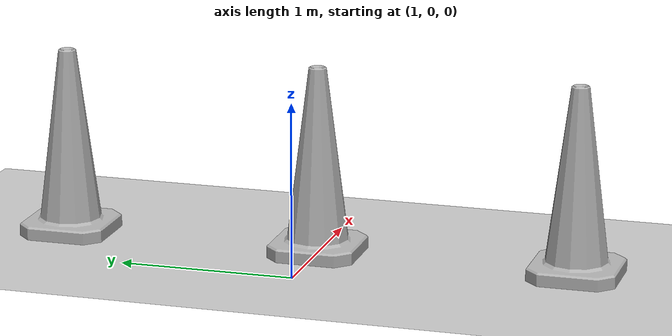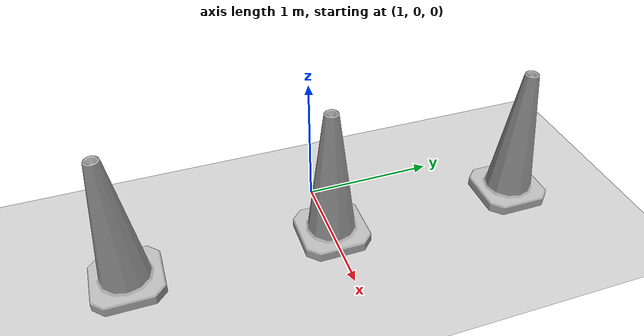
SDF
<?xml version="1.0"?>
<sdf version="1.5">
  <world name="basic_world">

    <include>
      <uri>model://ground_plane</uri>
    </include>

    <include>
      <uri>model://sun</uri>
      <pose>0 0 3.7 0 0.4 2.5</pose>
      <name>sun_0</name>
    </include>

    <include>
      <uri>model://construction_cone</uri>
      <pose>1.5 -7.655117950885444e-12 0 0 0 -1.5707963268</pose>
      <name>construction_cone_1</name>
    </include>

    <include>
      <uri>model://construction_cone</uri>
      <pose>1.5000000000076552 1.4999999999923448 0 0 0 -1.5707963268</pose>
      <name>construction_cone_2</name>
    </include>

    <include>
      <uri>model://construction_cone</uri>
      <pose>1.4999999999923448 -1.5000000000076552 0 0 0 -1.5707963268</pose>
      <name>construction_cone_3</name>
    </include>

  </world>
</sdf>

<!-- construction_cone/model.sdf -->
<sdf version="1.5">
  <model name="Construction Cone">
    <link name="link">
      <collision name="collision">
        <geometry>
          <mesh>
            <scale>10 10 10</scale>
            <uri>file://isr-testbed/construction_cone/meshes/construction_cone.dae</uri>
          </mesh>
        </geometry>
      </collision>
      <visual name="visual">
        <geometry>
          <mesh>
            <scale>10 10 10</scale>
            <uri>file://isr-testbed/construction_cone/meshes/construction_cone.dae</uri>
          </mesh>
        </geometry>
      </visual>
    </link>
  </model>
</sdf>
